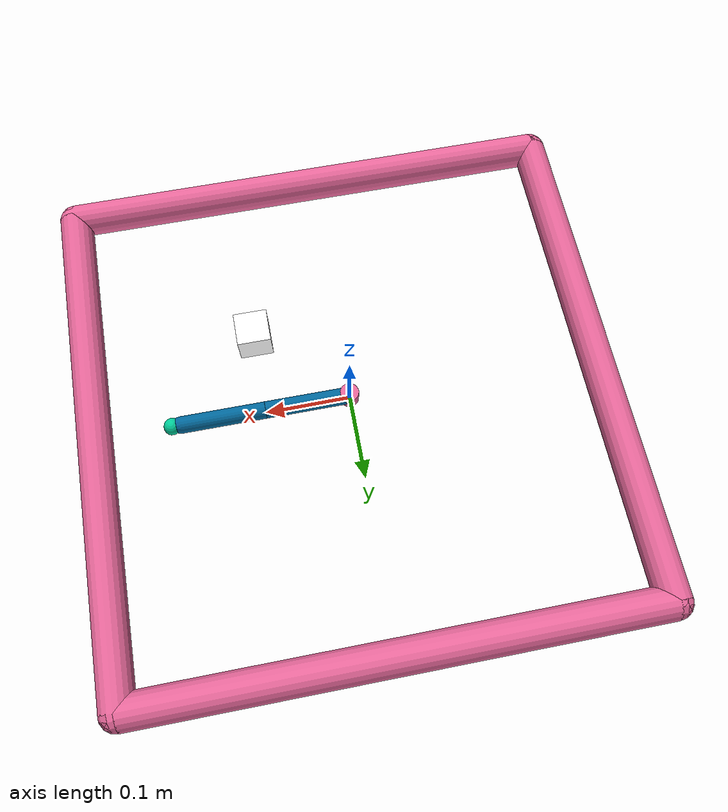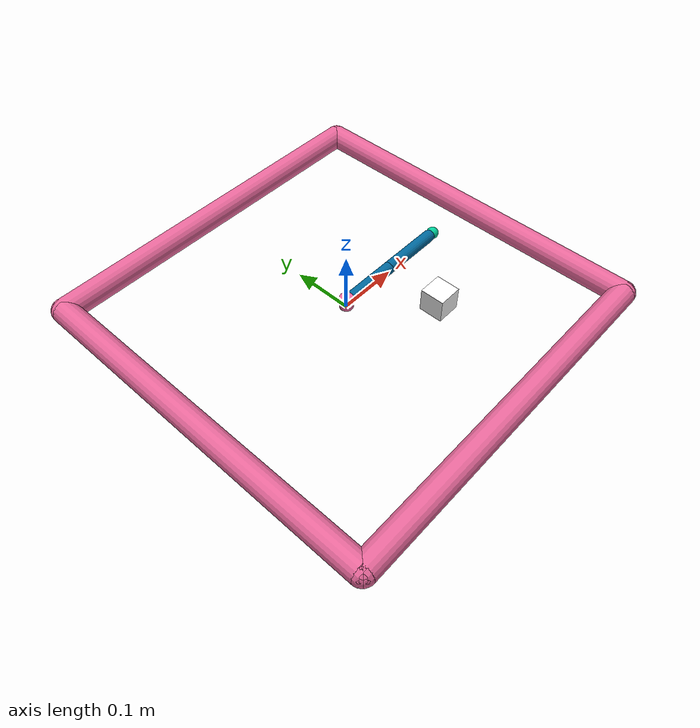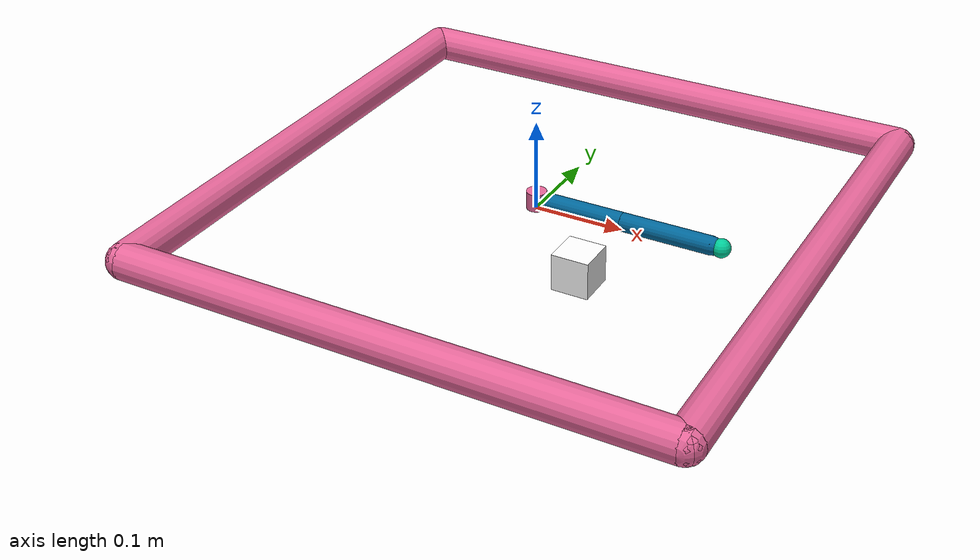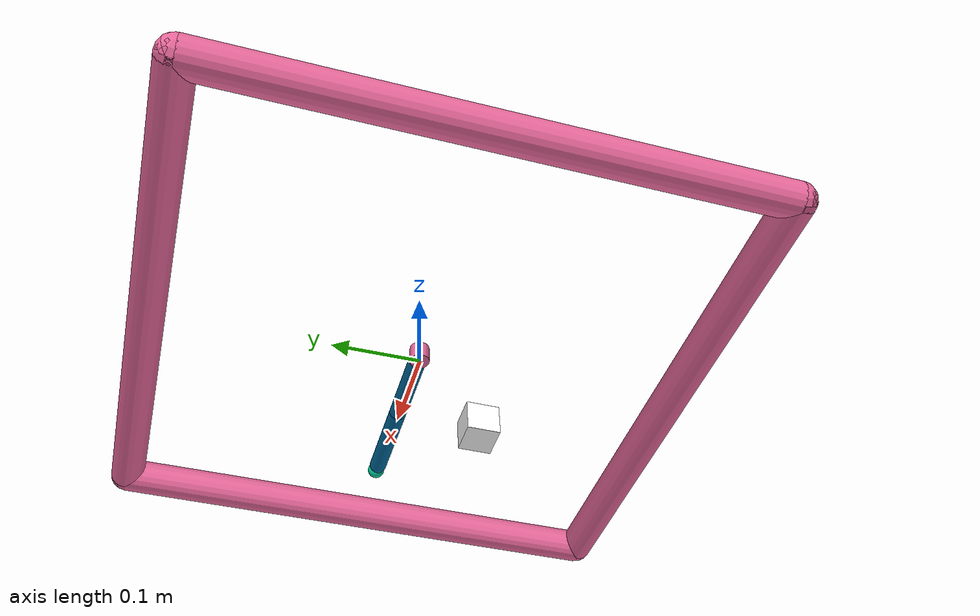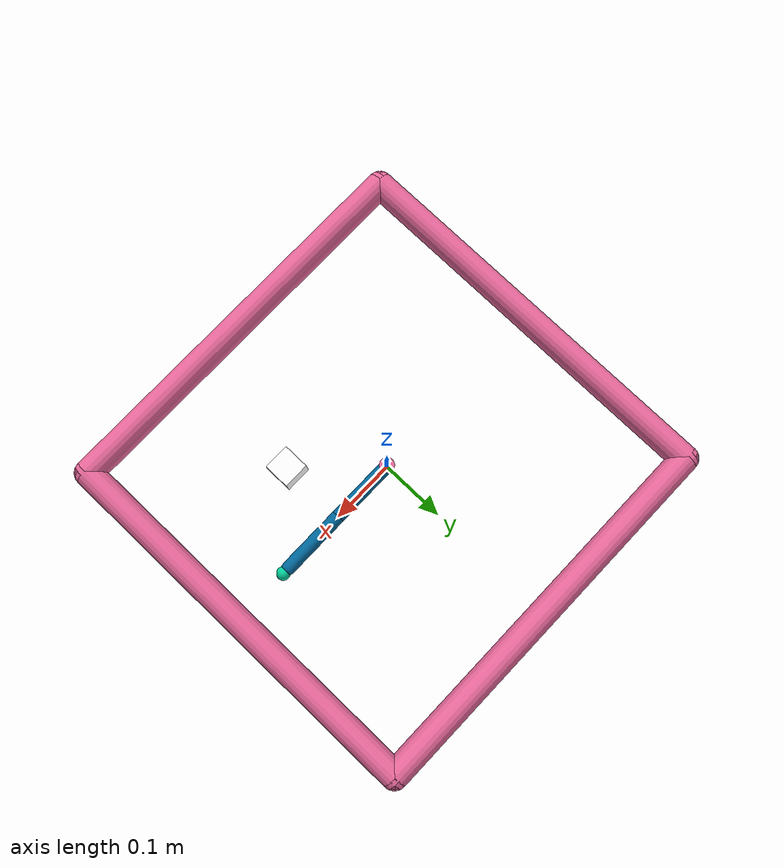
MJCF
<mujoco model="reacher">
	<compiler angle="radian" inertiafromgeom="true"/>
	<default>
		<joint armature="1" damping="1" limited="true"/>
		<geom contype="0" friction="1 0.1 0.1" rgba="0.7 0.7 0 1"/>
	</default>
	<option gravity="0 0 -9.81" integrator="RK4" timestep="0.01"/>
	<worldbody>
		<light diffuse=".5 .5 .5" pos="0 0 2" dir="0 0 -1"/>
		<!-- Arena -->
		<geom conaffinity="0" fromto="-.3 -.3 .01 .3 -.3 .01" name="sideS" rgba="0.9 0.4 0.6 1" size=".02" type="capsule"/>
		<geom conaffinity="0" fromto=" .3 -.3 .01 .3  .3 .01" name="sideE" rgba="0.9 0.4 0.6 1" size=".02" type="capsule"/>
		<geom conaffinity="0" fromto="-.3  .3 .01 .3  .3 .01" name="sideN" rgba="0.9 0.4 0.6 1" size=".02" type="capsule"/>
		<geom conaffinity="0" fromto="-.3 -.3 .01 -.3 .3 .01" name="sideW" rgba="0.9 0.4 0.6 1" size=".02" type="capsule"/>
		<!-- Arm -->
		<geom conaffinity="0" contype="0" fromto="0 0 0 0 0 0.02" name="root" rgba="0.9 0.4 0.6 1" size=".011" type="cylinder"/>
		<body name="body0" pos="0 0 .01">
			<geom fromto="0 0 0 0.1 0 0" name="link0" rgba="0.0 0.4 0.6 1" size=".01" type="capsule"/>
			<joint axis="0 0 1" limited="false" name="joint0" pos="0 0 0" type="hinge"/>
			<body name="body1" pos="0.1 0 0">
				<joint axis="0 0 1" limited="true" name="joint1" pos="0 0 0" range="-3.0 3.0" type="hinge"/>
				<geom fromto="0 0 0 0.1 0 0" name="link1" rgba="0.0 0.4 0.6 1" size=".01" type="capsule"/>
				<body name="fingertip" pos="0.11 0 0">
					<site name="fingertip" pos="0 0 0" size="0.01" />
					<geom contype="0" name="fingertip" pos="0 0 0" rgba="0.0 0.8 0.6 1" size=".01" type="sphere"/>
				</body>
			</body>
		</body>
		<!-- Target -->
        <body name="target" pos=".1 -.1 .01">
            <geom rgba="1. 1. 1. 1" type="box" size="0.02 0.02 0.02" density='0.00001' contype="0" conaffinity="0"/>
            <site name="target" pos="0 0 0" size="0.01" />
        </body>
	</worldbody>
	<actuator>
		<motor ctrllimited="true" ctrlrange="-1.0 1.0" gear="200.0" joint="joint0"/>
		<motor ctrllimited="true" ctrlrange="-1.0 1.0" gear="200.0" joint="joint1"/>
	</actuator>
</mujoco>
